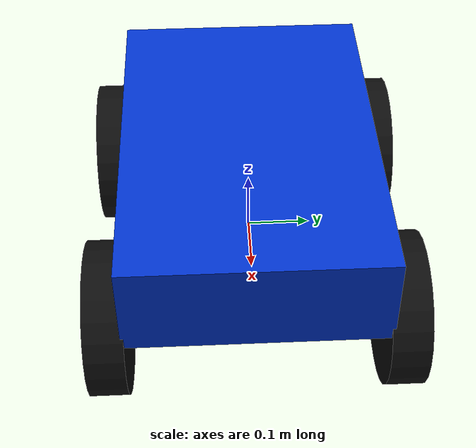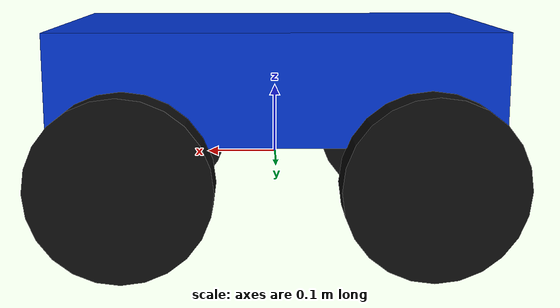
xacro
<?xml version="1.0"?>
<robot xmlns:xacro="http://www.ros.org/wiki/xacro" name="diff_drive_robot">

  <!-- База -->
  <xacro:property name="base_length" value="0.6"/>
  <xacro:property name="base_width"  value="0.4"/>
  <xacro:property name="base_height" value="0.15"/>

  <!-- Колёса -->
  <xacro:property name="wheel_radius" value="0.12"/>
  <xacro:property name="wheel_width"  value="0.06"/>
  <xacro:property name="wheel_offset_y" value="0.225"/>
  <xacro:property name="wheel_offset_x" value="0.2"/>

  <material name="blue"><color rgba="0 0.2 0.8 1"/></material>
  <material name="black"><color rgba="0.05 0.05 0.05 1"/></material>

  <!-- Корпус (центр корпуса на высоте wheel_radius, чтобы колёса стояли на земле) -->
  <link name="base_link">
    <visual>
      <origin xyz="0 0 ${wheel_radius}" rpy="0 0 0"/>
      <geometry><box size="${base_length} ${base_width} ${base_height}"/></geometry>
      <material name="blue"/>
    </visual>
    <collision>
      <origin xyz="0 0 ${wheel_radius}" rpy="0 0 0"/>
      <geometry><box size="${base_length} ${base_width} ${base_height}"/></geometry>
    </collision>
    <inertial>
      <mass value="8.0"/>
      <inertia ixx="0.15" ixy="0" ixz="0" iyy="0.25" iyz="0" izz="0.3"/>
    </inertial>
  </link>

  <!-- Макрос колеса -->
  <xacro:macro name="wheel" params="name x y">
    <link name="${name}">
      <visual>
        <origin xyz="0 0 0" rpy="1.5708 0 0"/>
        <geometry><cylinder radius="${wheel_radius}" length="${wheel_width}"/></geometry>
        <material name="black"/>
      </visual>
      <collision>
        <origin xyz="0 0 0" rpy="1.5708 0 0"/>
        <geometry><cylinder radius="${wheel_radius}" length="${wheel_width}"/></geometry>
      </collision>
      <inertial>
        <mass value="1.0"/>
        <inertia ixx="0.01" ixy="0" ixz="0" iyy="0.01" iyz="0" izz="0.01"/>
      </inertial>
    </link>

    <!-- Колёса лежат на земле: z = wheel_radius (потому что base_link поднят на wheel_radius) -->
    <joint name="${name}_joint" type="continuous">
      <parent link="base_link"/>
      <child link="${name}"/>
      <origin xyz="${x} ${y} 0" rpy="0 0 0"/>
      <axis xyz="0 1 0"/>
    </joint>
  </xacro:macro>

  <!-- 4 колеса -->
  <xacro:wheel name="front_left_wheel"  x="${wheel_offset_x}"  y="${wheel_offset_y}"/>
  <xacro:wheel name="front_right_wheel" x="${wheel_offset_x}"  y="-${wheel_offset_y}"/>
  <xacro:wheel name="rear_left_wheel"   x="-${wheel_offset_x}" y="${wheel_offset_y}"/>
  <xacro:wheel name="rear_right_wheel"  x="-${wheel_offset_x}" y="-${wheel_offset_y}"/>

  <!-- ВАЖНО: подключаем Gazebo-плагины (чтобы JointStatePublisher реально загрузился) -->
  <xacro:include filename="robot.gazebo.xacro"/>

</robot>
